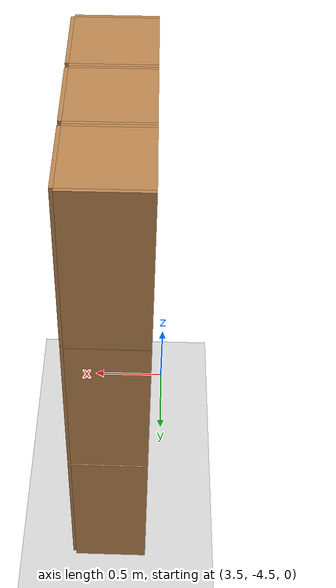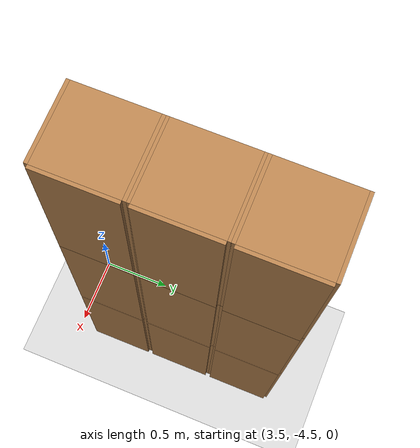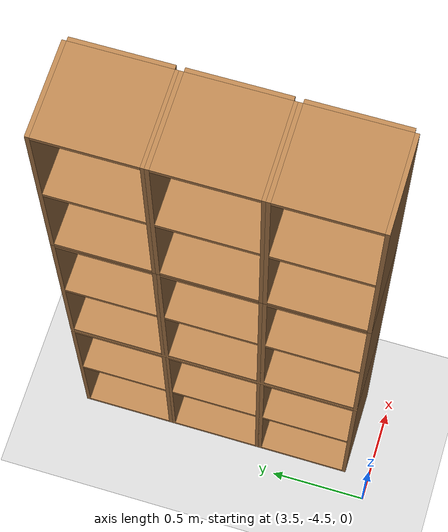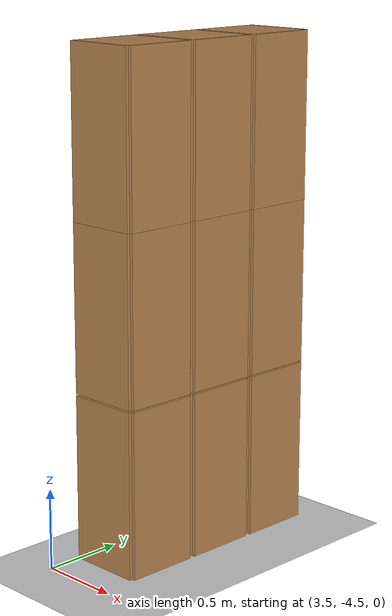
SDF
<sdf version="1.6">
 <world name="default">
  <model name="ground_plane">
   <static>1</static>
   <link name="link">
    <collision name="collision">
     <geometry><plane><normal>0 0 1</normal><size>100 100</size></plane></geometry>
     <surface>
      <contact><collide_bitmask>65535</collide_bitmask></contact>
      <friction><ode><mu>100</mu><mu2>50</mu2></ode></friction>
     </surface>
    </collision>
    <visual name="visual">
     <cast_shadows>0</cast_shadows>
     <geometry><plane><normal>0 0 1</normal><size>100 100</size></plane></geometry>
     <material>
      <script><uri>file://media/materials/scripts/gazebo.material</uri><name>Gazebo/Grey</name></script>
     </material>
    </visual>
   </link>
  </model>
  <model name="Locker18_clone_2">
   <model name="Locker18">
    <model name="Locker3">
     <model name="cabinet">
      <static>1</static>
      <link name="cabinet_bottom_plate">
       <inertial>
        <pose>0 0 -1 0 -0 0</pose>
        <inertia><ixx>2.05</ixx><ixy>0</ixy><ixz>0</ixz><iyy>2.05</iyy><iyz>0</iyz><izz>2.05</izz></inertia>
        <mass>25</mass>
       </inertial>
       <collision name="cabinet_bottom_plate_geom">
        <pose>0 0 0.01 0 -0 0</pose>
        <geometry><box><size>0.45 0.45 0.02</size></box></geometry>
       </collision>
       <visual name="cabinet_bottom_plate_geom_visual">
        <pose>0 0 0.01 0 -0 0</pose>
        <geometry><box><size>0.45 0.45 0.02</size></box></geometry>
        <material>
         <script><uri>file://media/materials/scripts/gazebo.material</uri><name>Gazebo/Wood</name></script>
        </material>
       </visual>
       <collision name="cabinet_bottom_plate_geom_cabinet_back_plate">
        <pose>0.235 0 0.51 0 -0 0</pose>
        <geometry><box><size>0.02 0.45 1.02</size></box></geometry>
       </collision>
       <visual name="cabinet_bottom_plate_geom_cabinet_back_plate_visual">
        <pose>0.235 0 0.51 0 -0 0</pose>
        <geometry><box><size>0.02 0.45 1.02</size></box></geometry>
        <material>
         <script><uri>file://media/materials/scripts/gazebo.material</uri><name>Gazebo/Wood</name></script>
        </material>
       </visual>
       <collision name="cabinet_bottom_plate_geom_cabinet_left_plate">
        <pose>0 0.235 0.51 0 -0 0</pose>
        <geometry><box><size>0.45 0.02 1.02</size></box></geometry>
       </collision>
       <visual name="cabinet_bottom_plate_geom_cabinet_left_plate_visual">
        <pose>0 0.235 0.51 0 -0 0</pose>
        <geometry><box><size>0.45 0.02 1.02</size></box></geometry>
        <material>
         <script><uri>file://media/materials/scripts/gazebo.material</uri><name>Gazebo/Wood</name></script>
        </material>
       </visual>
       <collision name="cabinet_bottom_plate_geom_cabinet_middle_plate">
        <pose>0 0 0.51 0 -0 0</pose>
        <geometry><box><size>0.45 0.45 0.02</size></box></geometry>
       </collision>
       <visual name="cabinet_bottom_plate_geom_cabinet_middle_plate_visual">
        <pose>0 0 0.51 0 -0 0</pose>
        <geometry><box><size>0.45 0.45 0.02</size></box></geometry>
        <material>
         <script><uri>file://media/materials/scripts/gazebo.material</uri><name>Gazebo/Wood</name></script>
        </material>
       </visual>
       <collision name="cabinet_bottom_plate_geom_cabinet_right_plate">
        <pose>0 -0.235 0.51 0 -0 0</pose>
        <geometry><box><size>0.45 0.02 1.02</size></box></geometry>
       </collision>
       <visual name="cabinet_bottom_plate_geom_cabinet_right_plate_visual">
        <pose>0 -0.235 0.51 0 -0 0</pose>
        <geometry><box><size>0.45 0.02 1.02</size></box></geometry>
        <material>
         <script><uri>file://media/materials/scripts/gazebo.material</uri><name>Gazebo/Wood</name></script>
        </material>
       </visual>
       <collision name="cabinet_bottom_plate_geom_cabinet_top_plate">
        <pose>0 0 1.01 0 -0 0</pose>
        <geometry><box><size>0.45 0.45 0.02</size></box></geometry>
       </collision>
       <visual name="cabinet_bottom_plate_geom_cabinet_top_plate_visual">
        <pose>0 0 1.01 0 -0 0</pose>
        <geometry><box><size>0.45 0.45 0.02</size></box></geometry>
        <material>
         <script><uri>file://media/materials/scripts/gazebo.material</uri><name>Gazebo/Wood</name></script>
        </material>
       </visual>
      </link>
      <pose>-0.676968 1.45758 0 0 -0 0</pose>
     </model>
     <model name="cabinet_clone">
      <static>1</static>
      <link name="cabinet_bottom_plate">
       <inertial>
        <pose>0 0 -1 0 -0 0</pose>
        <inertia><ixx>2.05</ixx><ixy>0</ixy><ixz>0</ixz><iyy>2.05</iyy><iyz>0</iyz><izz>2.05</izz></inertia>
        <mass>25</mass>
       </inertial>
       <collision name="cabinet_bottom_plate_geom">
        <pose>0 0 0.01 0 -0 0</pose>
        <geometry><box><size>0.45 0.45 0.02</size></box></geometry>
       </collision>
       <visual name="cabinet_bottom_plate_geom_visual">
        <pose>0 0 0.01 0 -0 0</pose>
        <geometry><box><size>0.45 0.45 0.02</size></box></geometry>
        <material>
         <script><uri>file://media/materials/scripts/gazebo.material</uri><name>Gazebo/Wood</name></script>
        </material>
       </visual>
       <collision name="cabinet_bottom_plate_geom_cabinet_back_plate">
        <pose>0.235 0 0.51 0 -0 0</pose>
        <geometry><box><size>0.02 0.45 1.02</size></box></geometry>
       </collision>
       <visual name="cabinet_bottom_plate_geom_cabinet_back_plate_visual">
        <pose>0.235 0 0.51 0 -0 0</pose>
        <geometry><box><size>0.02 0.45 1.02</size></box></geometry>
        <material>
         <script><uri>file://media/materials/scripts/gazebo.material</uri><name>Gazebo/Wood</name></script>
        </material>
       </visual>
       <collision name="cabinet_bottom_plate_geom_cabinet_left_plate">
        <pose>0 0.235 0.51 0 -0 0</pose>
        <geometry><box><size>0.45 0.02 1.02</size></box></geometry>
       </collision>
       <visual name="cabinet_bottom_plate_geom_cabinet_left_plate_visual">
        <pose>0 0.235 0.51 0 -0 0</pose>
        <geometry><box><size>0.45 0.02 1.02</size></box></geometry>
        <material>
         <script><uri>file://media/materials/scripts/gazebo.material</uri><name>Gazebo/Wood</name></script>
        </material>
       </visual>
       <collision name="cabinet_bottom_plate_geom_cabinet_middle_plate">
        <pose>0 0 0.51 0 -0 0</pose>
        <geometry><box><size>0.45 0.45 0.02</size></box></geometry>
       </collision>
       <visual name="cabinet_bottom_plate_geom_cabinet_middle_plate_visual">
        <pose>0 0 0.51 0 -0 0</pose>
        <geometry><box><size>0.45 0.45 0.02</size></box></geometry>
        <material>
         <script><uri>file://media/materials/scripts/gazebo.material</uri><name>Gazebo/Wood</name></script>
        </material>
       </visual>
       <collision name="cabinet_bottom_plate_geom_cabinet_right_plate">
        <pose>0 -0.235 0.51 0 -0 0</pose>
        <geometry><box><size>0.45 0.02 1.02</size></box></geometry>
       </collision>
       <visual name="cabinet_bottom_plate_geom_cabinet_right_plate_visual">
        <pose>0 -0.235 0.51 0 -0 0</pose>
        <geometry><box><size>0.45 0.02 1.02</size></box></geometry>
        <material>
         <script><uri>file://media/materials/scripts/gazebo.material</uri><name>Gazebo/Wood</name></script>
        </material>
       </visual>
       <collision name="cabinet_bottom_plate_geom_cabinet_top_plate">
        <pose>0 0 1.01 0 -0 0</pose>
        <geometry><box><size>0.45 0.45 0.02</size></box></geometry>
       </collision>
       <visual name="cabinet_bottom_plate_geom_cabinet_top_plate_visual">
        <pose>0 0 1.01 0 -0 0</pose>
        <geometry><box><size>0.45 0.45 0.02</size></box></geometry>
        <material>
         <script><uri>file://media/materials/scripts/gazebo.material</uri><name>Gazebo/Wood</name></script>
        </material>
       </visual>
      </link>
      <pose>-0.676968 0.970971 0 0 -0 0</pose>
     </model>
     <model name="cabinet_clone_0">
      <static>1</static>
      <link name="cabinet_bottom_plate">
       <inertial>
        <pose>0 0 -1 0 -0 0</pose>
        <inertia><ixx>2.05</ixx><ixy>0</ixy><ixz>0</ixz><iyy>2.05</iyy><iyz>0</iyz><izz>2.05</izz></inertia>
        <mass>25</mass>
       </inertial>
       <collision name="cabinet_bottom_plate_geom">
        <pose>0 0 0.01 0 -0 0</pose>
        <geometry><box><size>0.45 0.45 0.02</size></box></geometry>
       </collision>
       <visual name="cabinet_bottom_plate_geom_visual">
        <pose>0 0 0.01 0 -0 0</pose>
        <geometry><box><size>0.45 0.45 0.02</size></box></geometry>
        <material>
         <script><uri>file://media/materials/scripts/gazebo.material</uri><name>Gazebo/Wood</name></script>
        </material>
       </visual>
       <collision name="cabinet_bottom_plate_geom_cabinet_back_plate">
        <pose>0.235 0 0.51 0 -0 0</pose>
        <geometry><box><size>0.02 0.45 1.02</size></box></geometry>
       </collision>
       <visual name="cabinet_bottom_plate_geom_cabinet_back_plate_visual">
        <pose>0.235 0 0.51 0 -0 0</pose>
        <geometry><box><size>0.02 0.45 1.02</size></box></geometry>
        <material>
         <script><uri>file://media/materials/scripts/gazebo.material</uri><name>Gazebo/Wood</name></script>
        </material>
       </visual>
       <collision name="cabinet_bottom_plate_geom_cabinet_left_plate">
        <pose>0 0.235 0.51 0 -0 0</pose>
        <geometry><box><size>0.45 0.02 1.02</size></box></geometry>
       </collision>
       <visual name="cabinet_bottom_plate_geom_cabinet_left_plate_visual">
        <pose>0 0.235 0.51 0 -0 0</pose>
        <geometry><box><size>0.45 0.02 1.02</size></box></geometry>
        <material>
         <script><uri>file://media/materials/scripts/gazebo.material</uri><name>Gazebo/Wood</name></script>
        </material>
       </visual>
       <collision name="cabinet_bottom_plate_geom_cabinet_middle_plate">
        <pose>0 0 0.51 0 -0 0</pose>
        <geometry><box><size>0.45 0.45 0.02</size></box></geometry>
       </collision>
       <visual name="cabinet_bottom_plate_geom_cabinet_middle_plate_visual">
        <pose>0 0 0.51 0 -0 0</pose>
        <geometry><box><size>0.45 0.45 0.02</size></box></geometry>
        <material>
         <script><uri>file://media/materials/scripts/gazebo.material</uri><name>Gazebo/Wood</name></script>
        </material>
       </visual>
       <collision name="cabinet_bottom_plate_geom_cabinet_right_plate">
        <pose>0 -0.235 0.51 0 -0 0</pose>
        <geometry><box><size>0.45 0.02 1.02</size></box></geometry>
       </collision>
       <visual name="cabinet_bottom_plate_geom_cabinet_right_plate_visual">
        <pose>0 -0.235 0.51 0 -0 0</pose>
        <geometry><box><size>0.45 0.02 1.02</size></box></geometry>
        <material>
         <script><uri>file://media/materials/scripts/gazebo.material</uri><name>Gazebo/Wood</name></script>
        </material>
       </visual>
       <collision name="cabinet_bottom_plate_geom_cabinet_top_plate">
        <pose>0 0 1.01 0 -0 0</pose>
        <geometry><box><size>0.45 0.45 0.02</size></box></geometry>
       </collision>
       <visual name="cabinet_bottom_plate_geom_cabinet_top_plate_visual">
        <pose>0 0 1.01 0 -0 0</pose>
        <geometry><box><size>0.45 0.45 0.02</size></box></geometry>
        <material>
         <script><uri>file://media/materials/scripts/gazebo.material</uri><name>Gazebo/Wood</name></script>
        </material>
       </visual>
      </link>
      <pose>-0.676968 0.48391 0 0 -0 0</pose>
     </model>
     <static>0</static>
     <pose>0 3e-06 -1.02763 0 -0 0</pose>
    </model>
    <model name="Locker3_clone">
     <model name="cabinet">
      <static>1</static>
      <link name="cabinet_bottom_plate">
       <inertial>
        <pose>0 0 -1 0 -0 0</pose>
        <inertia><ixx>2.05</ixx><ixy>0</ixy><ixz>0</ixz><iyy>2.05</iyy><iyz>0</iyz><izz>2.05</izz></inertia>
        <mass>25</mass>
       </inertial>
       <collision name="cabinet_bottom_plate_geom">
        <pose>0 0 0.01 0 -0 0</pose>
        <geometry><box><size>0.45 0.45 0.02</size></box></geometry>
       </collision>
       <visual name="cabinet_bottom_plate_geom_visual">
        <pose>0 0 0.01 0 -0 0</pose>
        <geometry><box><size>0.45 0.45 0.02</size></box></geometry>
        <material>
         <script><uri>file://media/materials/scripts/gazebo.material</uri><name>Gazebo/Wood</name></script>
        </material>
       </visual>
       <collision name="cabinet_bottom_plate_geom_cabinet_back_plate">
        <pose>0.235 0 0.51 0 -0 0</pose>
        <geometry><box><size>0.02 0.45 1.02</size></box></geometry>
       </collision>
       <visual name="cabinet_bottom_plate_geom_cabinet_back_plate_visual">
        <pose>0.235 0 0.51 0 -0 0</pose>
        <geometry><box><size>0.02 0.45 1.02</size></box></geometry>
        <material>
         <script><uri>file://media/materials/scripts/gazebo.material</uri><name>Gazebo/Wood</name></script>
        </material>
       </visual>
       <collision name="cabinet_bottom_plate_geom_cabinet_left_plate">
        <pose>0 0.235 0.51 0 -0 0</pose>
        <geometry><box><size>0.45 0.02 1.02</size></box></geometry>
       </collision>
       <visual name="cabinet_bottom_plate_geom_cabinet_left_plate_visual">
        <pose>0 0.235 0.51 0 -0 0</pose>
        <geometry><box><size>0.45 0.02 1.02</size></box></geometry>
        <material>
         <script><uri>file://media/materials/scripts/gazebo.material</uri><name>Gazebo/Wood</name></script>
        </material>
       </visual>
       <collision name="cabinet_bottom_plate_geom_cabinet_middle_plate">
        <pose>0 0 0.51 0 -0 0</pose>
        <geometry><box><size>0.45 0.45 0.02</size></box></geometry>
       </collision>
       <visual name="cabinet_bottom_plate_geom_cabinet_middle_plate_visual">
        <pose>0 0 0.51 0 -0 0</pose>
        <geometry><box><size>0.45 0.45 0.02</size></box></geometry>
        <material>
         <script><uri>file://media/materials/scripts/gazebo.material</uri><name>Gazebo/Wood</name></script>
        </material>
       </visual>
       <collision name="cabinet_bottom_plate_geom_cabinet_right_plate">
        <pose>0 -0.235 0.51 0 -0 0</pose>
        <geometry><box><size>0.45 0.02 1.02</size></box></geometry>
       </collision>
       <visual name="cabinet_bottom_plate_geom_cabinet_right_plate_visual">
        <pose>0 -0.235 0.51 0 -0 0</pose>
        <geometry><box><size>0.45 0.02 1.02</size></box></geometry>
        <material>
         <script><uri>file://media/materials/scripts/gazebo.material</uri><name>Gazebo/Wood</name></script>
        </material>
       </visual>
       <collision name="cabinet_bottom_plate_geom_cabinet_top_plate">
        <pose>0 0 1.01 0 -0 0</pose>
        <geometry><box><size>0.45 0.45 0.02</size></box></geometry>
       </collision>
       <visual name="cabinet_bottom_plate_geom_cabinet_top_plate_visual">
        <pose>0 0 1.01 0 -0 0</pose>
        <geometry><box><size>0.45 0.45 0.02</size></box></geometry>
        <material>
         <script><uri>file://media/materials/scripts/gazebo.material</uri><name>Gazebo/Wood</name></script>
        </material>
       </visual>
      </link>
      <pose>-0.676968 1.45758 0 0 -0 0</pose>
     </model>
     <model name="cabinet_clone">
      <static>1</static>
      <link name="cabinet_bottom_plate">
       <inertial>
        <pose>0 0 -1 0 -0 0</pose>
        <inertia><ixx>2.05</ixx><ixy>0</ixy><ixz>0</ixz><iyy>2.05</iyy><iyz>0</iyz><izz>2.05</izz></inertia>
        <mass>25</mass>
       </inertial>
       <collision name="cabinet_bottom_plate_geom">
        <pose>0 0 0.01 0 -0 0</pose>
        <geometry><box><size>0.45 0.45 0.02</size></box></geometry>
       </collision>
       <visual name="cabinet_bottom_plate_geom_visual">
        <pose>0 0 0.01 0 -0 0</pose>
        <geometry><box><size>0.45 0.45 0.02</size></box></geometry>
        <material>
         <script><uri>file://media/materials/scripts/gazebo.material</uri><name>Gazebo/Wood</name></script>
        </material>
       </visual>
       <collision name="cabinet_bottom_plate_geom_cabinet_back_plate">
        <pose>0.235 0 0.51 0 -0 0</pose>
        <geometry><box><size>0.02 0.45 1.02</size></box></geometry>
       </collision>
       <visual name="cabinet_bottom_plate_geom_cabinet_back_plate_visual">
        <pose>0.235 0 0.51 0 -0 0</pose>
        <geometry><box><size>0.02 0.45 1.02</size></box></geometry>
        <material>
         <script><uri>file://media/materials/scripts/gazebo.material</uri><name>Gazebo/Wood</name></script>
        </material>
       </visual>
       <collision name="cabinet_bottom_plate_geom_cabinet_left_plate">
        <pose>0 0.235 0.51 0 -0 0</pose>
        <geometry><box><size>0.45 0.02 1.02</size></box></geometry>
       </collision>
       <visual name="cabinet_bottom_plate_geom_cabinet_left_plate_visual">
        <pose>0 0.235 0.51 0 -0 0</pose>
        <geometry><box><size>0.45 0.02 1.02</size></box></geometry>
        <material>
         <script><uri>file://media/materials/scripts/gazebo.material</uri><name>Gazebo/Wood</name></script>
        </material>
       </visual>
       <collision name="cabinet_bottom_plate_geom_cabinet_middle_plate">
        <pose>0 0 0.51 0 -0 0</pose>
        <geometry><box><size>0.45 0.45 0.02</size></box></geometry>
       </collision>
       <visual name="cabinet_bottom_plate_geom_cabinet_middle_plate_visual">
        <pose>0 0 0.51 0 -0 0</pose>
        <geometry><box><size>0.45 0.45 0.02</size></box></geometry>
        <material>
         <script><uri>file://media/materials/scripts/gazebo.material</uri><name>Gazebo/Wood</name></script>
        </material>
       </visual>
       <collision name="cabinet_bottom_plate_geom_cabinet_right_plate">
        <pose>0 -0.235 0.51 0 -0 0</pose>
        <geometry><box><size>0.45 0.02 1.02</size></box></geometry>
       </collision>
       <visual name="cabinet_bottom_plate_geom_cabinet_right_plate_visual">
        <pose>0 -0.235 0.51 0 -0 0</pose>
        <geometry><box><size>0.45 0.02 1.02</size></box></geometry>
        <material>
         <script><uri>file://media/materials/scripts/gazebo.material</uri><name>Gazebo/Wood</name></script>
        </material>
       </visual>
       <collision name="cabinet_bottom_plate_geom_cabinet_top_plate">
        <pose>0 0 1.01 0 -0 0</pose>
        <geometry><box><size>0.45 0.45 0.02</size></box></geometry>
       </collision>
       <visual name="cabinet_bottom_plate_geom_cabinet_top_plate_visual">
        <pose>0 0 1.01 0 -0 0</pose>
        <geometry><box><size>0.45 0.45 0.02</size></box></geometry>
        <material>
         <script><uri>file://media/materials/scripts/gazebo.material</uri><name>Gazebo/Wood</name></script>
        </material>
       </visual>
      </link>
      <pose>-0.676968 0.970971 0 0 -0 0</pose>
     </model>
     <model name="cabinet_clone_0">
      <static>1</static>
      <link name="cabinet_bottom_plate">
       <inertial>
        <pose>0 0 -1 0 -0 0</pose>
        <inertia><ixx>2.05</ixx><ixy>0</ixy><ixz>0</ixz><iyy>2.05</iyy><iyz>0</iyz><izz>2.05</izz></inertia>
        <mass>25</mass>
       </inertial>
       <collision name="cabinet_bottom_plate_geom">
        <pose>0 0 0.01 0 -0 0</pose>
        <geometry><box><size>0.45 0.45 0.02</size></box></geometry>
       </collision>
       <visual name="cabinet_bottom_plate_geom_visual">
        <pose>0 0 0.01 0 -0 0</pose>
        <geometry><box><size>0.45 0.45 0.02</size></box></geometry>
        <material>
         <script><uri>file://media/materials/scripts/gazebo.material</uri><name>Gazebo/Wood</name></script>
        </material>
       </visual>
       <collision name="cabinet_bottom_plate_geom_cabinet_back_plate">
        <pose>0.235 0 0.51 0 -0 0</pose>
        <geometry><box><size>0.02 0.45 1.02</size></box></geometry>
       </collision>
       <visual name="cabinet_bottom_plate_geom_cabinet_back_plate_visual">
        <pose>0.235 0 0.51 0 -0 0</pose>
        <geometry><box><size>0.02 0.45 1.02</size></box></geometry>
        <material>
         <script><uri>file://media/materials/scripts/gazebo.material</uri><name>Gazebo/Wood</name></script>
        </material>
       </visual>
       <collision name="cabinet_bottom_plate_geom_cabinet_left_plate">
        <pose>0 0.235 0.51 0 -0 0</pose>
        <geometry><box><size>0.45 0.02 1.02</size></box></geometry>
       </collision>
       <visual name="cabinet_bottom_plate_geom_cabinet_left_plate_visual">
        <pose>0 0.235 0.51 0 -0 0</pose>
        <geometry><box><size>0.45 0.02 1.02</size></box></geometry>
        <material>
         <script><uri>file://media/materials/scripts/gazebo.material</uri><name>Gazebo/Wood</name></script>
        </material>
       </visual>
       <collision name="cabinet_bottom_plate_geom_cabinet_middle_plate">
        <pose>0 0 0.51 0 -0 0</pose>
        <geometry><box><size>0.45 0.45 0.02</size></box></geometry>
       </collision>
       <visual name="cabinet_bottom_plate_geom_cabinet_middle_plate_visual">
        <pose>0 0 0.51 0 -0 0</pose>
        <geometry><box><size>0.45 0.45 0.02</size></box></geometry>
        <material>
         <script><uri>file://media/materials/scripts/gazebo.material</uri><name>Gazebo/Wood</name></script>
        </material>
       </visual>
       <collision name="cabinet_bottom_plate_geom_cabinet_right_plate">
        <pose>0 -0.235 0.51 0 -0 0</pose>
        <geometry><box><size>0.45 0.02 1.02</size></box></geometry>
       </collision>
       <visual name="cabinet_bottom_plate_geom_cabinet_right_plate_visual">
        <pose>0 -0.235 0.51 0 -0 0</pose>
        <geometry><box><size>0.45 0.02 1.02</size></box></geometry>
        <material>
         <script><uri>file://media/materials/scripts/gazebo.material</uri><name>Gazebo/Wood</name></script>
        </material>
       </visual>
       <collision name="cabinet_bottom_plate_geom_cabinet_top_plate">
        <pose>0 0 1.01 0 -0 0</pose>
        <geometry><box><size>0.45 0.45 0.02</size></box></geometry>
       </collision>
       <visual name="cabinet_bottom_plate_geom_cabinet_top_plate_visual">
        <pose>0 0 1.01 0 -0 0</pose>
        <geometry><box><size>0.45 0.45 0.02</size></box></geometry>
        <material>
         <script><uri>file://media/materials/scripts/gazebo.material</uri><name>Gazebo/Wood</name></script>
        </material>
       </visual>
      </link>
      <pose>-0.676968 0.48391 0 0 -0 0</pose>
     </model>
     <static>0</static>
     <pose>0 3e-06 0.003717 0 -0 0</pose>
    </model>
    <model name="Locker3_clone_clone">
     <model name="cabinet">
      <static>1</static>
      <link name="cabinet_bottom_plate">
       <inertial>
        <pose>0 0 -1 0 -0 0</pose>
        <inertia><ixx>2.05</ixx><ixy>0</ixy><ixz>0</ixz><iyy>2.05</iyy><iyz>0</iyz><izz>2.05</izz></inertia>
        <mass>25</mass>
       </inertial>
       <collision name="cabinet_bottom_plate_geom">
        <pose>0 0 0.01 0 -0 0</pose>
        <geometry><box><size>0.45 0.45 0.02</size></box></geometry>
       </collision>
       <visual name="cabinet_bottom_plate_geom_visual">
        <pose>0 0 0.01 0 -0 0</pose>
        <geometry><box><size>0.45 0.45 0.02</size></box></geometry>
        <material>
         <script><uri>file://media/materials/scripts/gazebo.material</uri><name>Gazebo/Wood</name></script>
        </material>
       </visual>
       <collision name="cabinet_bottom_plate_geom_cabinet_back_plate">
        <pose>0.235 0 0.51 0 -0 0</pose>
        <geometry><box><size>0.02 0.45 1.02</size></box></geometry>
       </collision>
       <visual name="cabinet_bottom_plate_geom_cabinet_back_plate_visual">
        <pose>0.235 0 0.51 0 -0 0</pose>
        <geometry><box><size>0.02 0.45 1.02</size></box></geometry>
        <material>
         <script><uri>file://media/materials/scripts/gazebo.material</uri><name>Gazebo/Wood</name></script>
        </material>
       </visual>
       <collision name="cabinet_bottom_plate_geom_cabinet_left_plate">
        <pose>0 0.235 0.51 0 -0 0</pose>
        <geometry><box><size>0.45 0.02 1.02</size></box></geometry>
       </collision>
       <visual name="cabinet_bottom_plate_geom_cabinet_left_plate_visual">
        <pose>0 0.235 0.51 0 -0 0</pose>
        <geometry><box><size>0.45 0.02 1.02</size></box></geometry>
        <material>
         <script><uri>file://media/materials/scripts/gazebo.material</uri><name>Gazebo/Wood</name></script>
        </material>
       </visual>
       <collision name="cabinet_bottom_plate_geom_cabinet_middle_plate">
        <pose>0 0 0.51 0 -0 0</pose>
        <geometry><box><size>0.45 0.45 0.02</size></box></geometry>
       </collision>
       <visual name="cabinet_bottom_plate_geom_cabinet_middle_plate_visual">
        <pose>0 0 0.51 0 -0 0</pose>
        <geometry><box><size>0.45 0.45 0.02</size></box></geometry>
        <material>
         <script><uri>file://media/materials/scripts/gazebo.material</uri><name>Gazebo/Wood</name></script>
        </material>
       </visual>
       <collision name="cabinet_bottom_plate_geom_cabinet_right_plate">
        <pose>0 -0.235 0.51 0 -0 0</pose>
        <geometry><box><size>0.45 0.02 1.02</size></box></geometry>
       </collision>
       <visual name="cabinet_bottom_plate_geom_cabinet_right_plate_visual">
        <pose>0 -0.235 0.51 0 -0 0</pose>
        <geometry><box><size>0.45 0.02 1.02</size></box></geometry>
        <material>
         <script><uri>file://media/materials/scripts/gazebo.material</uri><name>Gazebo/Wood</name></script>
        </material>
       </visual>
       <collision name="cabinet_bottom_plate_geom_cabinet_top_plate">
        <pose>0 0 1.01 0 -0 0</pose>
        <geometry><box><size>0.45 0.45 0.02</size></box></geometry>
       </collision>
       <visual name="cabinet_bottom_plate_geom_cabinet_top_plate_visual">
        <pose>0 0 1.01 0 -0 0</pose>
        <geometry><box><size>0.45 0.45 0.02</size></box></geometry>
        <material>
         <script><uri>file://media/materials/scripts/gazebo.material</uri><name>Gazebo/Wood</name></script>
        </material>
       </visual>
      </link>
      <pose>-0.676968 1.45758 0 0 -0 0</pose>
     </model>
     <model name="cabinet_clone">
      <static>1</static>
      <link name="cabinet_bottom_plate">
       <inertial>
        <pose>0 0 -1 0 -0 0</pose>
        <inertia><ixx>2.05</ixx><ixy>0</ixy><ixz>0</ixz><iyy>2.05</iyy><iyz>0</iyz><izz>2.05</izz></inertia>
        <mass>25</mass>
       </inertial>
       <collision name="cabinet_bottom_plate_geom">
        <pose>0 0 0.01 0 -0 0</pose>
        <geometry><box><size>0.45 0.45 0.02</size></box></geometry>
       </collision>
       <visual name="cabinet_bottom_plate_geom_visual">
        <pose>0 0 0.01 0 -0 0</pose>
        <geometry><box><size>0.45 0.45 0.02</size></box></geometry>
        <material>
         <script><uri>file://media/materials/scripts/gazebo.material</uri><name>Gazebo/Wood</name></script>
        </material>
       </visual>
       <collision name="cabinet_bottom_plate_geom_cabinet_back_plate">
        <pose>0.235 0 0.51 0 -0 0</pose>
        <geometry><box><size>0.02 0.45 1.02</size></box></geometry>
       </collision>
       <visual name="cabinet_bottom_plate_geom_cabinet_back_plate_visual">
        <pose>0.235 0 0.51 0 -0 0</pose>
        <geometry><box><size>0.02 0.45 1.02</size></box></geometry>
        <material>
         <script><uri>file://media/materials/scripts/gazebo.material</uri><name>Gazebo/Wood</name></script>
        </material>
       </visual>
       <collision name="cabinet_bottom_plate_geom_cabinet_left_plate">
        <pose>0 0.235 0.51 0 -0 0</pose>
        <geometry><box><size>0.45 0.02 1.02</size></box></geometry>
       </collision>
       <visual name="cabinet_bottom_plate_geom_cabinet_left_plate_visual">
        <pose>0 0.235 0.51 0 -0 0</pose>
        <geometry><box><size>0.45 0.02 1.02</size></box></geometry>
        <material>
         <script><uri>file://media/materials/scripts/gazebo.material</uri><name>Gazebo/Wood</name></script>
        </material>
       </visual>
       <collision name="cabinet_bottom_plate_geom_cabinet_middle_plate">
        <pose>0 0 0.51 0 -0 0</pose>
        <geometry><box><size>0.45 0.45 0.02</size></box></geometry>
       </collision>
       <visual name="cabinet_bottom_plate_geom_cabinet_middle_plate_visual">
        <pose>0 0 0.51 0 -0 0</pose>
        <geometry><box><size>0.45 0.45 0.02</size></box></geometry>
        <material>
         <script><uri>file://media/materials/scripts/gazebo.material</uri><name>Gazebo/Wood</name></script>
        </material>
       </visual>
       <collision name="cabinet_bottom_plate_geom_cabinet_right_plate">
        <pose>0 -0.235 0.51 0 -0 0</pose>
        <geometry><box><size>0.45 0.02 1.02</size></box></geometry>
       </collision>
       <visual name="cabinet_bottom_plate_geom_cabinet_right_plate_visual">
        <pose>0 -0.235 0.51 0 -0 0</pose>
        <geometry><box><size>0.45 0.02 1.02</size></box></geometry>
        <material>
         <script><uri>file://media/materials/scripts/gazebo.material</uri><name>Gazebo/Wood</name></script>
        </material>
       </visual>
       <collision name="cabinet_bottom_plate_geom_cabinet_top_plate">
        <pose>0 0 1.01 0 -0 0</pose>
        <geometry><box><size>0.45 0.45 0.02</size></box></geometry>
       </collision>
       <visual name="cabinet_bottom_plate_geom_cabinet_top_plate_visual">
        <pose>0 0 1.01 0 -0 0</pose>
        <geometry><box><size>0.45 0.45 0.02</size></box></geometry>
        <material>
         <script><uri>file://media/materials/scripts/gazebo.material</uri><name>Gazebo/Wood</name></script>
        </material>
       </visual>
      </link>
      <pose>-0.676968 0.970971 0 0 -0 0</pose>
     </model>
     <model name="cabinet_clone_0">
      <static>1</static>
      <link name="cabinet_bottom_plate">
       <inertial>
        <pose>0 0 -1 0 -0 0</pose>
        <inertia><ixx>2.05</ixx><ixy>0</ixy><ixz>0</ixz><iyy>2.05</iyy><iyz>0</iyz><izz>2.05</izz></inertia>
        <mass>25</mass>
       </inertial>
       <collision name="cabinet_bottom_plate_geom">
        <pose>0 0 0.01 0 -0 0</pose>
        <geometry><box><size>0.45 0.45 0.02</size></box></geometry>
       </collision>
       <visual name="cabinet_bottom_plate_geom_visual">
        <pose>0 0 0.01 0 -0 0</pose>
        <geometry><box><size>0.45 0.45 0.02</size></box></geometry>
        <material>
         <script><uri>file://media/materials/scripts/gazebo.material</uri><name>Gazebo/Wood</name></script>
        </material>
       </visual>
       <collision name="cabinet_bottom_plate_geom_cabinet_back_plate">
        <pose>0.235 0 0.51 0 -0 0</pose>
        <geometry><box><size>0.02 0.45 1.02</size></box></geometry>
       </collision>
       <visual name="cabinet_bottom_plate_geom_cabinet_back_plate_visual">
        <pose>0.235 0 0.51 0 -0 0</pose>
        <geometry><box><size>0.02 0.45 1.02</size></box></geometry>
        <material>
         <script><uri>file://media/materials/scripts/gazebo.material</uri><name>Gazebo/Wood</name></script>
        </material>
       </visual>
       <collision name="cabinet_bottom_plate_geom_cabinet_left_plate">
        <pose>0 0.235 0.51 0 -0 0</pose>
        <geometry><box><size>0.45 0.02 1.02</size></box></geometry>
       </collision>
       <visual name="cabinet_bottom_plate_geom_cabinet_left_plate_visual">
        <pose>0 0.235 0.51 0 -0 0</pose>
        <geometry><box><size>0.45 0.02 1.02</size></box></geometry>
        <material>
         <script><uri>file://media/materials/scripts/gazebo.material</uri><name>Gazebo/Wood</name></script>
        </material>
       </visual>
       <collision name="cabinet_bottom_plate_geom_cabinet_middle_plate">
        <pose>0 0 0.51 0 -0 0</pose>
        <geometry><box><size>0.45 0.45 0.02</size></box></geometry>
       </collision>
       <visual name="cabinet_bottom_plate_geom_cabinet_middle_plate_visual">
        <pose>0 0 0.51 0 -0 0</pose>
        <geometry><box><size>0.45 0.45 0.02</size></box></geometry>
        <material>
         <script><uri>file://media/materials/scripts/gazebo.material</uri><name>Gazebo/Wood</name></script>
        </material>
       </visual>
       <collision name="cabinet_bottom_plate_geom_cabinet_right_plate">
        <pose>0 -0.235 0.51 0 -0 0</pose>
        <geometry><box><size>0.45 0.02 1.02</size></box></geometry>
       </collision>
       <visual name="cabinet_bottom_plate_geom_cabinet_right_plate_visual">
        <pose>0 -0.235 0.51 0 -0 0</pose>
        <geometry><box><size>0.45 0.02 1.02</size></box></geometry>
        <material>
         <script><uri>file://media/materials/scripts/gazebo.material</uri><name>Gazebo/Wood</name></script>
        </material>
       </visual>
       <collision name="cabinet_bottom_plate_geom_cabinet_top_plate">
        <pose>0 0 1.01 0 -0 0</pose>
        <geometry><box><size>0.45 0.45 0.02</size></box></geometry>
       </collision>
       <visual name="cabinet_bottom_plate_geom_cabinet_top_plate_visual">
        <pose>0 0 1.01 0 -0 0</pose>
        <geometry><box><size>0.45 0.45 0.02</size></box></geometry>
        <material>
         <script><uri>file://media/materials/scripts/gazebo.material</uri><name>Gazebo/Wood</name></script>
        </material>
       </visual>
      </link>
      <pose>-0.676968 0.48391 0 0 -0 0</pose>
     </model>
     <static>0</static>
     <pose>0 3e-06 1.02391 0 -0 0</pose>
    </model>
    <static>0</static>
    <pose>-0 4e-06 4e-06 0 -0 0</pose>
   </model>
   <static>0</static>
   <pose>4.50277 -4.61192 1.08672 0 -0 0</pose>
  </model>
 </world>
</sdf>
